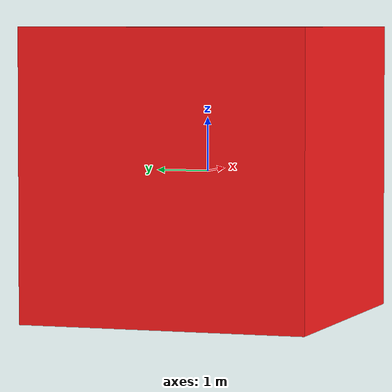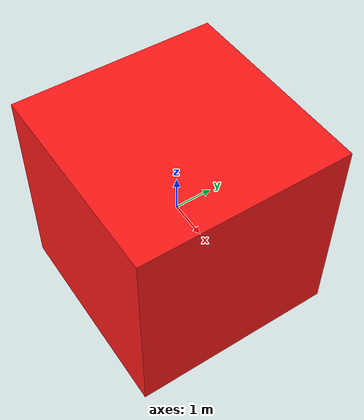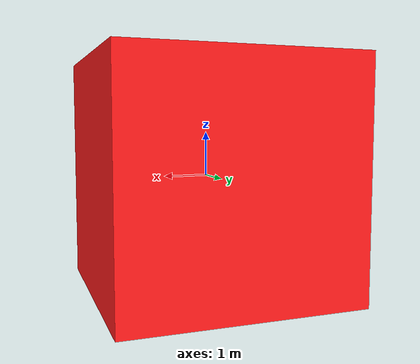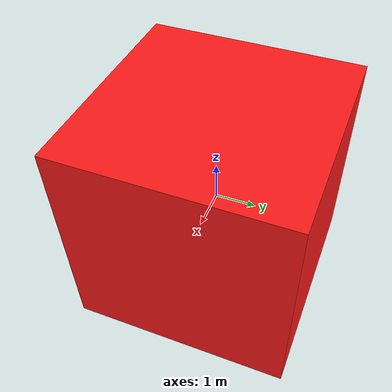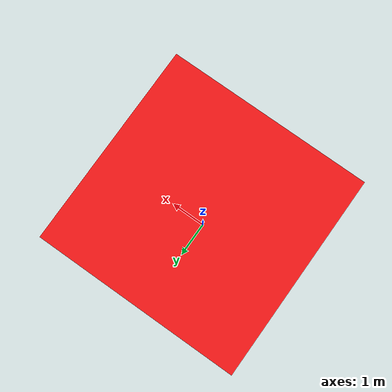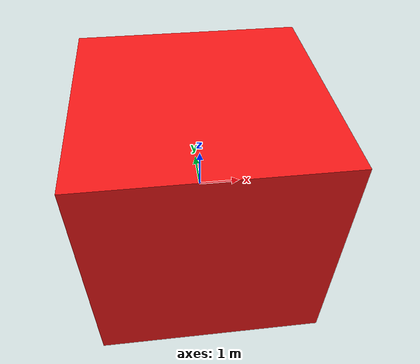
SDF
<?xml version="1.0" ?>
<sdf version="1.10">
  <model name="race_gate">
    <!-- Racing gate: cubic frame with ring inside (visual only) -->
    <!-- Dimensions: 5m x 5m opening, 0.2m frame width -->
    <static>true</static>

    <!-- Main frame geometry -->
    <link name="gate_frame">
      <inertial>
        <mass>10.0</mass>
        <inertia>
          <ixx>1.0</ixx>
          <ixy>0.0</ixy>
          <ixz>0.0</ixz>
          <iyy>1.0</iyy>
          <iyz>0.0</iyz>
          <izz>1.0</izz>
        </inertia>
      </inertial>

      <!-- Collision: simple cylinder with radius 2.6m (interior), height 5.2m -->
      <!-- This creates the "gate opening" detection volume -->
      <collision name="gate_collision">
        <pose>0 0 0 0 0 0</pose>
        <geometry>
          <cylinder>
            <radius>2.6</radius>
            <length>5.2</length>
          </cylinder>
        </geometry>
      </collision>

      <!-- Visual: frame cube (4 corner posts + top/bottom beams) -->
      <visual name="frame_visual">
        <pose>0 0 0 0 0 0</pose>
        <geometry>
          <box>
            <size>5.4 5.4 5.4</size>
          </box>
        </geometry>
        <material>
          <ambient>1.0 0.0 0.0 1.0</ambient>
          <diffuse>1.0 0.1 0.1 1.0</diffuse>
          <specular>0.5 0.5 0.5 1.0</specular>
          <emissive>0.2 0.0 0.0 1.0</emissive>
        </material>
      </visual>

      <!-- Inner ring (visual indicator) -->
      <visual name="inner_ring">
        <pose>0 0 0 1.5708 0 0</pose>
        <geometry>
          <cylinder>
            <radius>2.5</radius>
            <length>0.1</length>
          </cylinder>
        </geometry>
        <material>
          <ambient>0.2 0.8 0.2 0.8</ambient>
          <diffuse>0.3 1.0 0.3 0.8</diffuse>
          <specular>0.5 0.5 0.5 1.0</specular>
        </material>
      </visual>
    </link>

    <!-- Detection link (for measuring gate passages) -->
    <link name="gate_sensor">
      <collision name="sensor_collision">
        <pose>0 0 0 0 0 0</pose>
        <geometry>
          <cylinder>
            <radius>2.6</radius>
            <length>5.2</length>
          </cylinder>
        </geometry>
      </collision>
    </link>

    <!-- Fixedjoint between frame and sensor -->
    <joint name="frame_to_sensor" type="fixed">
      <parent>gate_frame</parent>
      <child>gate_sensor</child>
    </joint>
  </model>
</sdf>
